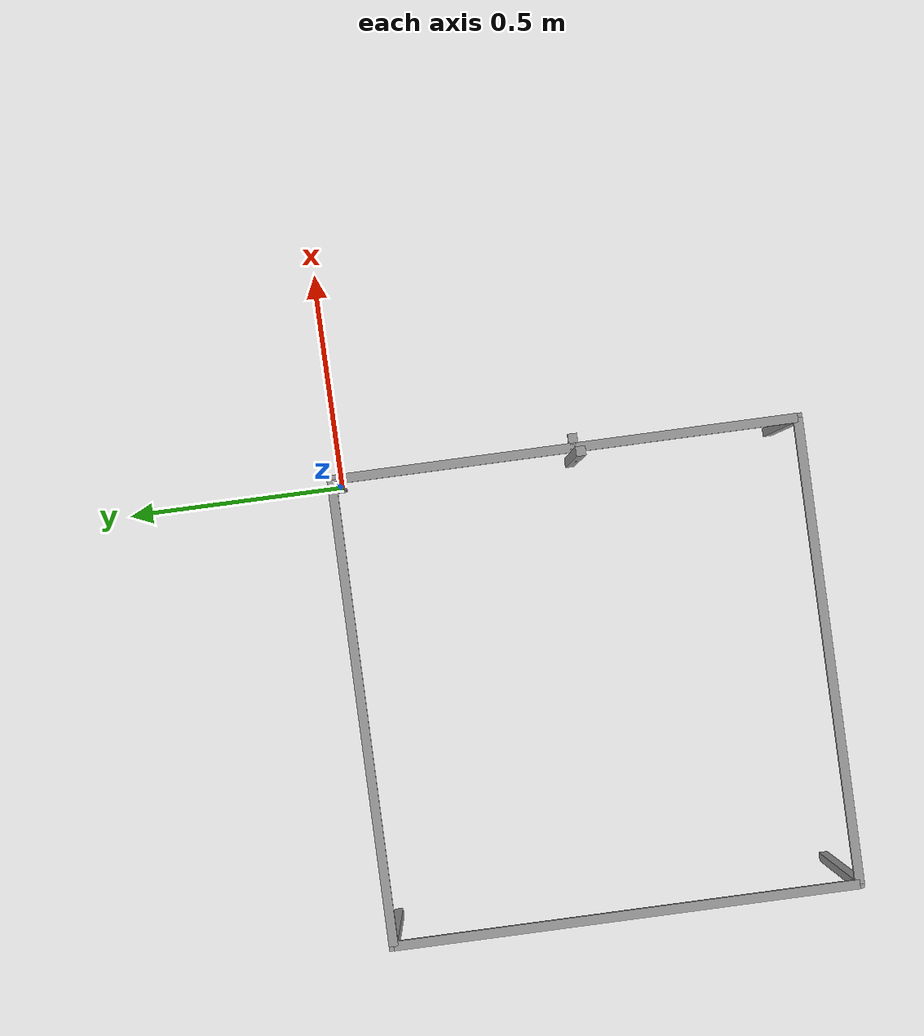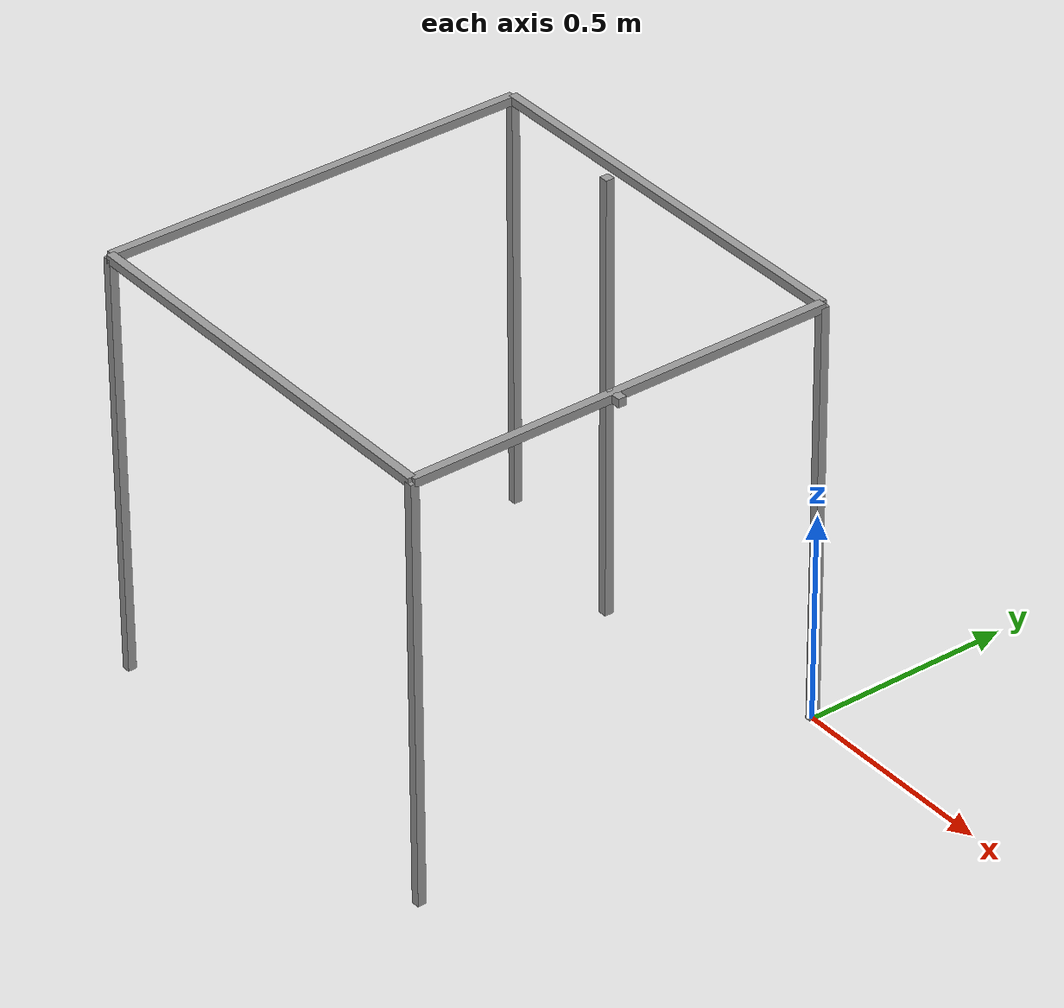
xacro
<?xml version="1.0"?>
<robot xmlns:xacro="http://www.ros.org/wiki/xacro" name="rectangular_gantry">
    <xacro:arg name="initial_positions_file" default="initial_positions.yaml" />

    <!-- Import rectangular_gantry urdf file -->
    <xacro:include filename="$(find gantry2)/urdf/gantry.xacro" />

    <!-- Import control_xacro -->
    <xacro:include filename="rectangular_gantry.ros2_control.xacro" />

    <xacro:rectangular_gantry_ros2_control name="FakeSystem" initial_positions_file="$(arg initial_positions_file)"/>

</robot>

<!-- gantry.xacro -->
<robot xmlns:xacro="http://www.ros.org/wiki/xacro" name="rectangular_gantry">

  <xacro:property name="length_bar" value="1" />    <!-- travel along X (m) -->
  <xacro:property name="thickness_bar" value="0.02" />    <!-- travel along X (m) -->
  <xacro:property name="width_bar" value="0.02" />    <!-- travel along X (m) -->
  <xacro:property name="mass_bar" value="1" />    <!-- travel along X (m) -->

  <!-- Macro for a bar -->
  <xacro:macro name="bar" params="name length width thickness">
    <link name="${name}">
      <visual>
        <origin xyz="0 0 0" rpy="0 0 0" />
        <geometry>
          <box size="${length} ${width} ${thickness}" />
        </geometry>
        <material name="gray">
          <color rgba="0.6 0.6 0.6 1.0" />
        </material>
      </visual>
      <collision>
        <origin xyz="0 0 0" rpy="0 0 0" />
        <geometry>
          <box size="${length} ${width} ${thickness}" />
        </geometry>
      </collision>
      <inertial>
        <origin xyz="0 0 0" rpy="0 0 0" />
        <mass value="${mass_bar}" />
        <inertia ixx="1.0" ixy="0" ixz="0" iyy="1.0" iyz="0" izz="1.0" />
      </inertial>
    </link>
  </xacro:macro>

  <!-- Macro for a fixed joint -->
  <xacro:macro name="fixed_joint" params="parent child xyz rpy">
    <joint name="${parent}_to_${child}" type="fixed">
      <parent link="${parent}" />
      <child link="${child}" />
      <origin xyz="${xyz}" rpy="${rpy}" />
    </joint>
  </xacro:macro>

  <xacro:macro name="prismatic_joint" params="parent child xyz rpy axis lower upper">
    <joint name="${parent}_to_${child}" type="prismatic">
      <parent link="${parent}" />
      <child link="${child}" />
      <origin xyz="${xyz}" rpy="${rpy}" />
      <axis xyz="${axis}" />
      <limit lower="${lower}" upper="${upper}" effort="100" velocity="1.0" />
    </joint>
  </xacro:macro>

  <!-- Base link -->
  <link name="map" />

  <!-- Bars + joints -->
  <xacro:bar name="leg1" length="${length_bar}" width="${width_bar}" thickness="${thickness_bar}" />
  <xacro:fixed_joint parent="map" child="leg1" xyz="0 0 ${length_bar/2}" rpy="0 -${pi/2} 0" />

  <xacro:bar name="leg2" length="${length_bar}" width="${width_bar}" thickness="${thickness_bar}" />
  <xacro:fixed_joint parent="map" child="leg2" xyz="-${length_bar} 0 ${length_bar/2}"
    rpy="0 -${pi/2} 0" />

  <xacro:bar name="layer1" length="${length_bar}" width="${width_bar}" thickness="${thickness_bar}" />
  <xacro:fixed_joint parent="map" child="layer1" xyz="-${length_bar/2} 0 ${length_bar}" rpy="0 0 0" />

  <xacro:bar name="layer2" length="${length_bar}" width="${width_bar}" thickness="${thickness_bar}" />
  <xacro:fixed_joint parent="map" child="layer2" xyz="-${length_bar} -${length_bar/2} ${length_bar}"
    rpy="0 0 -${pi/2}" />

  <xacro:bar name="leg3" length="${length_bar}" width="${width_bar}" thickness="${thickness_bar}" />
  <xacro:fixed_joint parent="map" child="leg3" xyz="-${length_bar} -${length_bar} ${length_bar/2}"
    rpy="0 -${pi/2} 0" />

  <xacro:bar name="layer3" length="${length_bar}" width="${width_bar}" thickness="${thickness_bar}" />
  <xacro:fixed_joint parent="map" child="layer3" xyz="0 -${length_bar/2} ${length_bar}"
    rpy="0 0 -${pi/2}" />

  <xacro:bar name="leg4" length="${length_bar}" width="${width_bar}" thickness="${thickness_bar}" />
  <xacro:fixed_joint parent="map" child="leg4" xyz="0 -${length_bar} ${length_bar/2}"
    rpy="0 -${pi/2} 0" />

  <xacro:bar name="layer4" length="${length_bar}" width="${width_bar}" thickness="${thickness_bar}" />
  <xacro:fixed_joint parent="map" child="layer4" xyz="-${length_bar/2} -${length_bar} ${length_bar}"
    rpy="0 0 0" />

  <xacro:bar name="xaxis" length="${length_bar}" width="${width_bar}" thickness="${thickness_bar}" />
  <xacro:prismatic_joint parent="map" child="xaxis"
    xyz="0 -${length_bar/2} ${length_bar}"
    rpy="0 0 -${pi/2}"
    axis="0 1 0"
    lower="-${length_bar}" upper="0" />

  <!-- Make the below small the dimensions of ${width_bar} ${width_bar} ${width_bar} -->
  <xacro:bar name="yaxis" length="${width_bar}" width="${width_bar + width_bar + width_bar}"
    thickness="${width_bar}" />
  <xacro:prismatic_joint parent="xaxis" child="yaxis"
    xyz="${width_bar} 0 0"
    rpy="0 -${pi/2} 0"
    axis="0 0 1"
    lower="-${length_bar/2}" upper="${length_bar/2}" />

  <xacro:bar name="zaxis" length="${length_bar}" width="${width_bar}"
    thickness="${thickness_bar}" />
  <xacro:prismatic_joint parent="yaxis" child="zaxis"
    xyz="-${width_bar} -${width_bar} 0"
    rpy="0 0 0"
    axis="1 0 0"
    lower="-${length_bar/2}" upper="${length_bar/2}" />

</robot>
